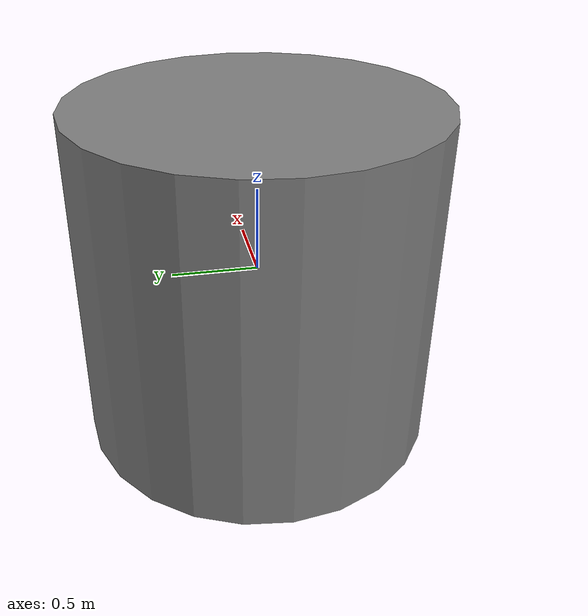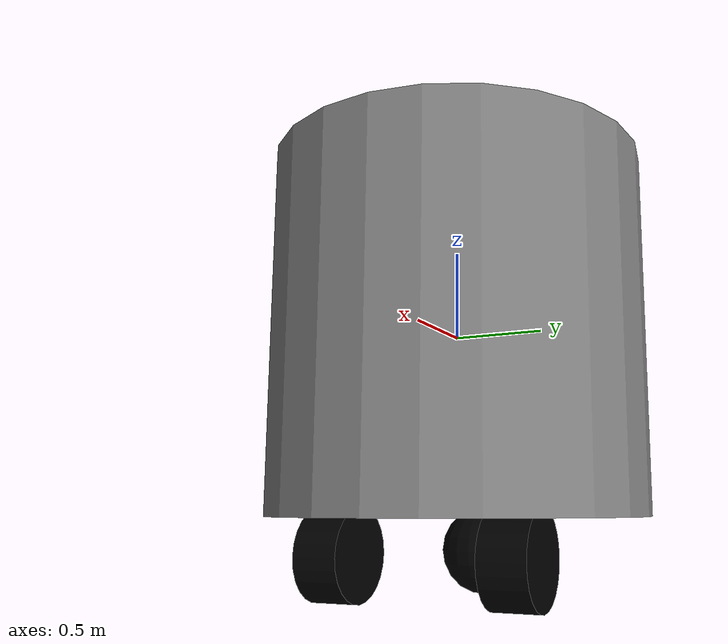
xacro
<?xml version="1.0" encoding="utf-8"?>
<!-- |    This document was autogenerated by xacro from ../ex00/robot.urdf             | -->
<!-- |    EDITING THIS FILE BY HAND IS NOT RECOMMENDED                                 | -->

<robot name="robot" xmlns:xacro="http://www.ros.org/wiki/xacro">
  <xacro:include filename="$(find robot_diff_drive)/urdf/robot.gazebo.xacro"/>

  <material name="gray">
    <color rgba="0.5 0.5 0.5 1"/>
  </material>

  <material name="black">
    <color rgba="0 0 0 1"/>
  </material>

  <link name="base_link">
    <visual>
      <geometry>
        <cylinder length="2.0" radius="1.05"/>
      </geometry>
      <material name="gray"/>
    </visual>
    <collision>
      <geometry>
        <cylinder length="2.0" radius="1.05"/>
      </geometry>
    </collision>
    <inertial>
      <mass value="20"/>
      <inertia ixx="12.1792" ixy="0.0" ixz="0.0" iyy="12.1792" iyz="0.0" izz="11.025"/>
    </inertial>
  </link>

  <link name="right_wheel">
    <visual>
      <geometry>
        <cylinder length="0.25" radius="0.25"/>
      </geometry>
      <origin rpy="1.57075 1.57075 0"/>
      <material name="black"/>
    </visual>
    <collision>
      <geometry>
        <cylinder length="0.25" radius="0.25"/>
      </geometry>
      <origin rpy="1.57075 1.57075 0"/>
    </collision>
    <inertial>
      <mu1 value="2.0"/>
      <mu2 value="1.0"/>
      <kp value="10000000.0" />
      <kd value="1.0" />
      <mass value="4"/>
      <inertia ixx="0.0833" ixy="0.0" ixz="0.0" iyy="0.0833" iyz="0.0" izz="0.125"/>
    </inertial>
  </link>

  <joint name="right_wheel_to_base_link" type="continuous">
    <parent link="base_link"/>
    <child link="right_wheel"/>
    <axis xyz="0 1 0"/>
    <origin xyz="0.4 0.5 -1.2"/>
  </joint>

  <transmission name="right_wheel_trans">
    <type>transmission_interface/SimpleTransmission</type>
    <actuator name="right_wheel_motor">
      <mechanicalReduction>1</mechanicalReduction>
    </actuator>
    <joint name="right_wheel_to_base_link">
      <hardwareInterface>hardware_interface/VelocityJointInterface</hardwareInterface>
    </joint>
  </transmission>

  <gazebo reference="right_wheel">
    <mu1 value="2.0"/>
    <mu2 value="1.0"/>
    <kp value="10000000.0" />
    <kd value="1.0" />
    <material>Gazebo/Grey</material>
  </gazebo>

  <link name="left_wheel">
    <visual>
      <geometry>
        <cylinder length="0.25" radius="0.25"/>
      </geometry>
      <origin rpy="1.57075 1.57075 0"/>
      <material name="black"/>
    </visual>
    <collision>
      <geometry>
        <cylinder length="0.25" radius="0.25"/>
      </geometry>
      <origin rpy="1.57075 1.57075 0"/>
    </collision>
    <inertial>
      <mu1 value="2.0"/>
      <mu2 value="1.0"/>
      <kp value="10000000.0" />
      <kd value="1.0" />
      <mass value="4"/>
      <inertia ixx="0.0833" ixy="0.0" ixz="0.0" iyy="0.0833" iyz="0.0" izz="0.125"/>
    </inertial>
  </link>

  <joint name="left_wheel_to_base_link" type="continuous">
    <parent link="base_link"/>
    <child link="left_wheel"/>
    <axis xyz="0 1 0"/>
    <origin xyz="0.4 -0.5 -1.2"/>
  </joint>

  <transmission name="left_wheel_trans">
    <type>transmission_interface/SimpleTransmission</type>
    <actuator name="left_wheel_motor">
      <mechanicalReduction>1</mechanicalReduction>
    </actuator>
    <joint name="left_wheel_to_base_link">
      <hardwareInterface>hardware_interface/VelocityJointInterface</hardwareInterface>
    </joint>
  </transmission>

  <gazebo reference="left_wheel">
    <mu1 value="2.0"/>
    <mu2 value="1.0"/>
    <kp value="10000000.0" />
    <kd value="1.0" />
    <material>Gazebo/Grey</material>
  </gazebo>

  <link name="custer">
    <visual>
      <geometry>
        <sphere radius="0.25"/>
      </geometry>
      <origin rpy="0 0 0"/>
      <material name="black"/>
    </visual>
    <collision>
      <geometry>
        <sphere radius="0.25"/>
      </geometry>
    </collision>
    <inertial>
      <mu1 value="0.01"/>
      <mu2 value="0.01"/>
      <kp value="10000000.0" />
      <kd value="1.0" />
      <mass value="5"/>
      <inertia ixx="0.125" ixy="0.0" ixz="0.0" iyy="0.125" iyz="0.0" izz="0.125"/>
    </inertial>
  </link>

  <joint name="custer_to_base_link" type="fixed">
    <parent link="base_link"/>
    <child link="custer"/>
    <origin xyz="-0.4 0.0 -1.2"/>
    <limit effort="1000" velocity="10"/>
  </joint>

  <transmission name="custer_to_base_link_trans">
    <type>transmission_interface/SimpleTransmission</type>
    <actuator name="custer_to_base_link_motor">
      <mechanicalReduction>1</mechanicalReduction>
    </actuator>
    <joint name="custer_to_base_link">
      <hardwareInterface>hardware_interface/PositionJointInterface</hardwareInterface>
    </joint>
  </transmission>

  <gazebo reference="custer">
    <mu1 value="0.01"/>
    <mu2 value="0.01"/>
    <kp value="10000000.0" />
    <kd value="1.0" />
    <material>Gazebo/Grey</material>
  </gazebo>

  <!-- Gazebo plugin for ROS Control -->
  <gazebo>
    <plugin name="gazebo_ros_control" filename="libgazebo_ros_control.so">
      <robotNamespace>/</robotNamespace>
    </plugin>
  </gazebo>
</robot>
